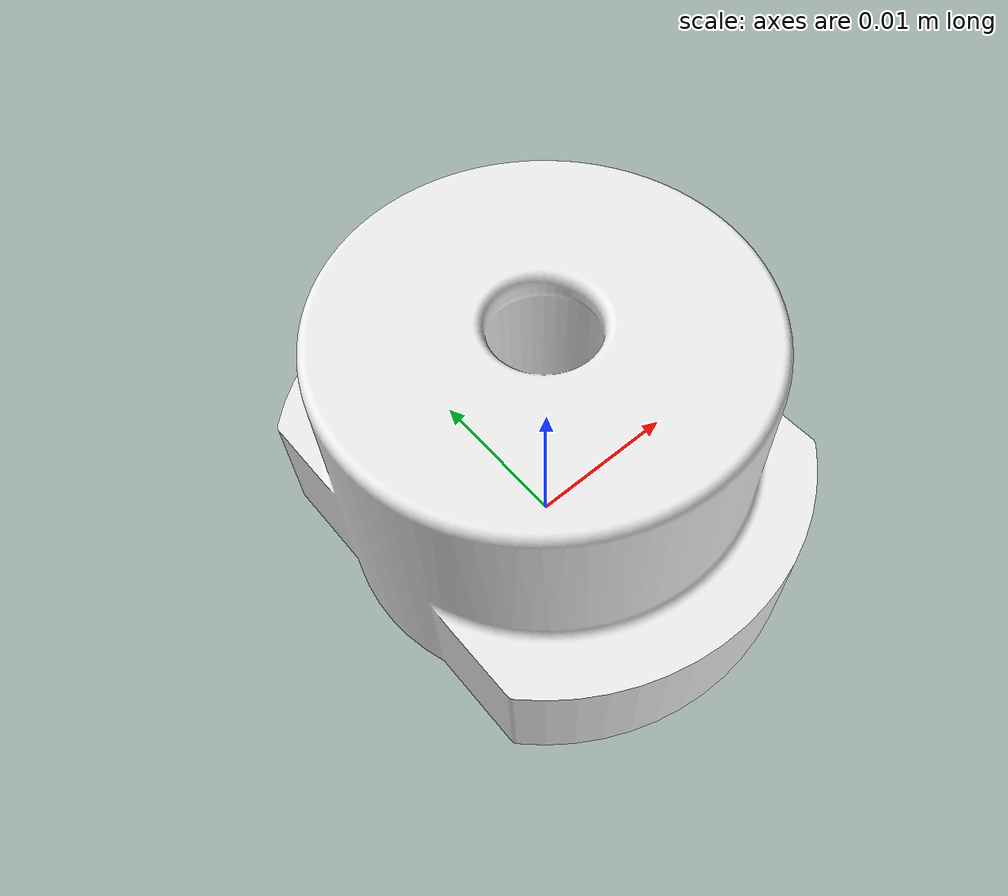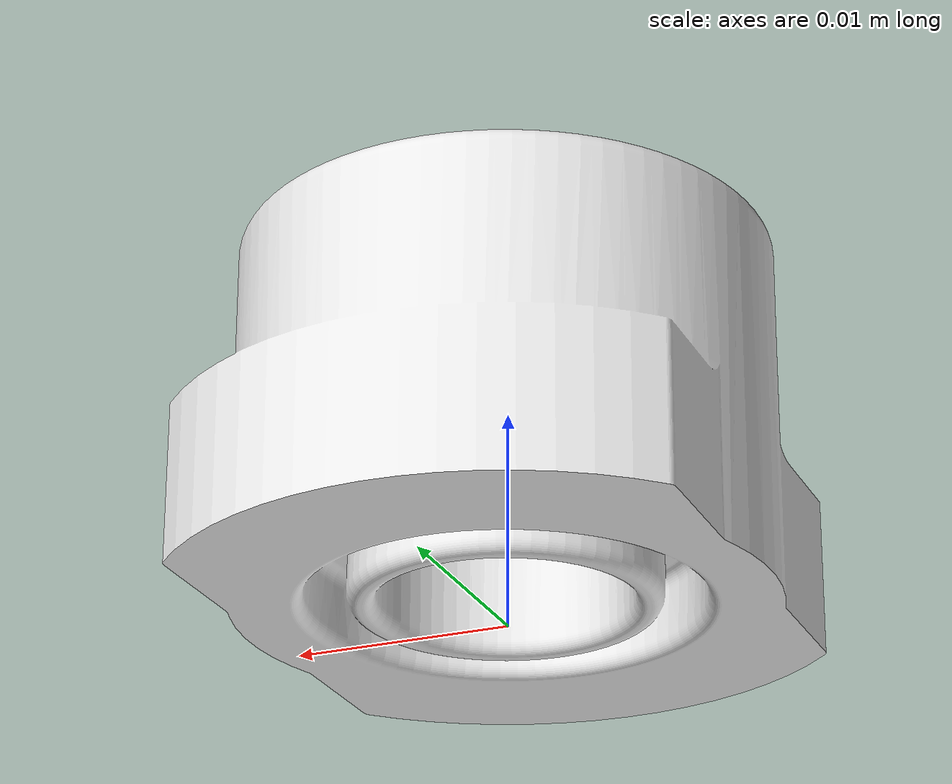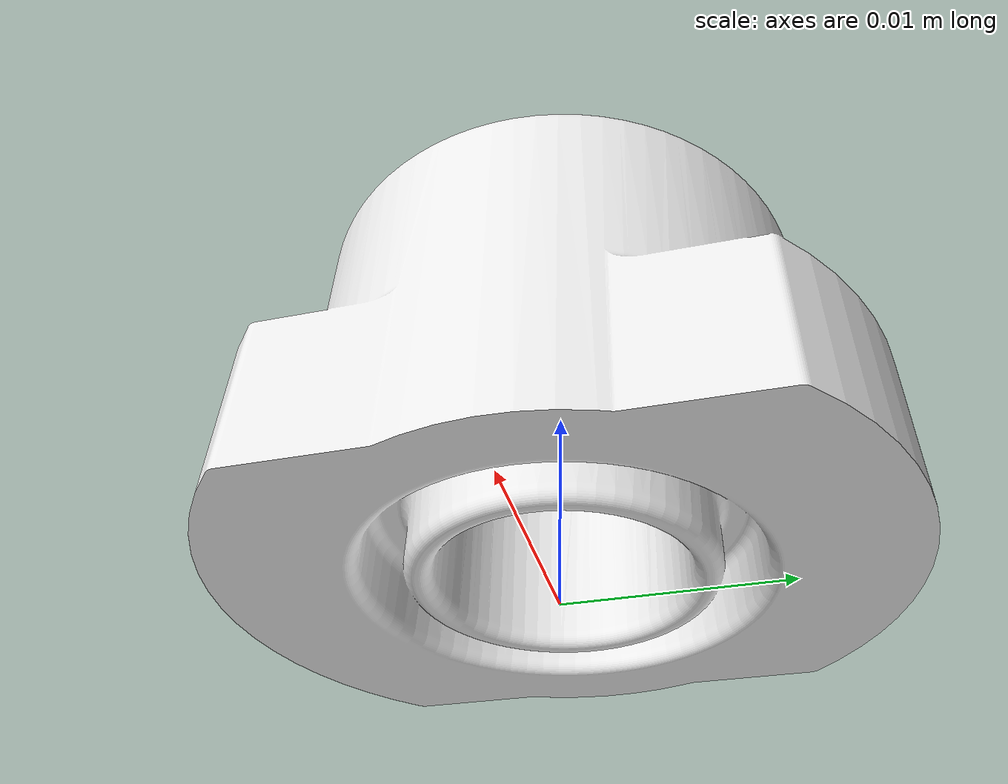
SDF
<?xml version="1.0" ?>
<sdf version="1.5">
  <model name="Part1">
    <static>true</static>
    <link name="part1_link">

      <collision name="collision">
        <geometry>
          <mesh>
            <uri>model://part1/meshes/part1.dae</uri>
            <scale>1.1 1.1 1.4</scale>
          </mesh>
        </geometry>
      </collision>

      <visual name="visual">
        <geometry>
          <mesh>
            <uri>model://part1/meshes/part1.dae</uri>
            <scale>1.1 1.1 1.4</scale>
          </mesh>
        </geometry>
        <material>
          <script>
            <uri>file://media/materials/scripts/gazebo.material</uri>
            <name>Gazebo/White</name>
          </script>
        </material>
      </visual>
    </link>
  </model>
</sdf>
